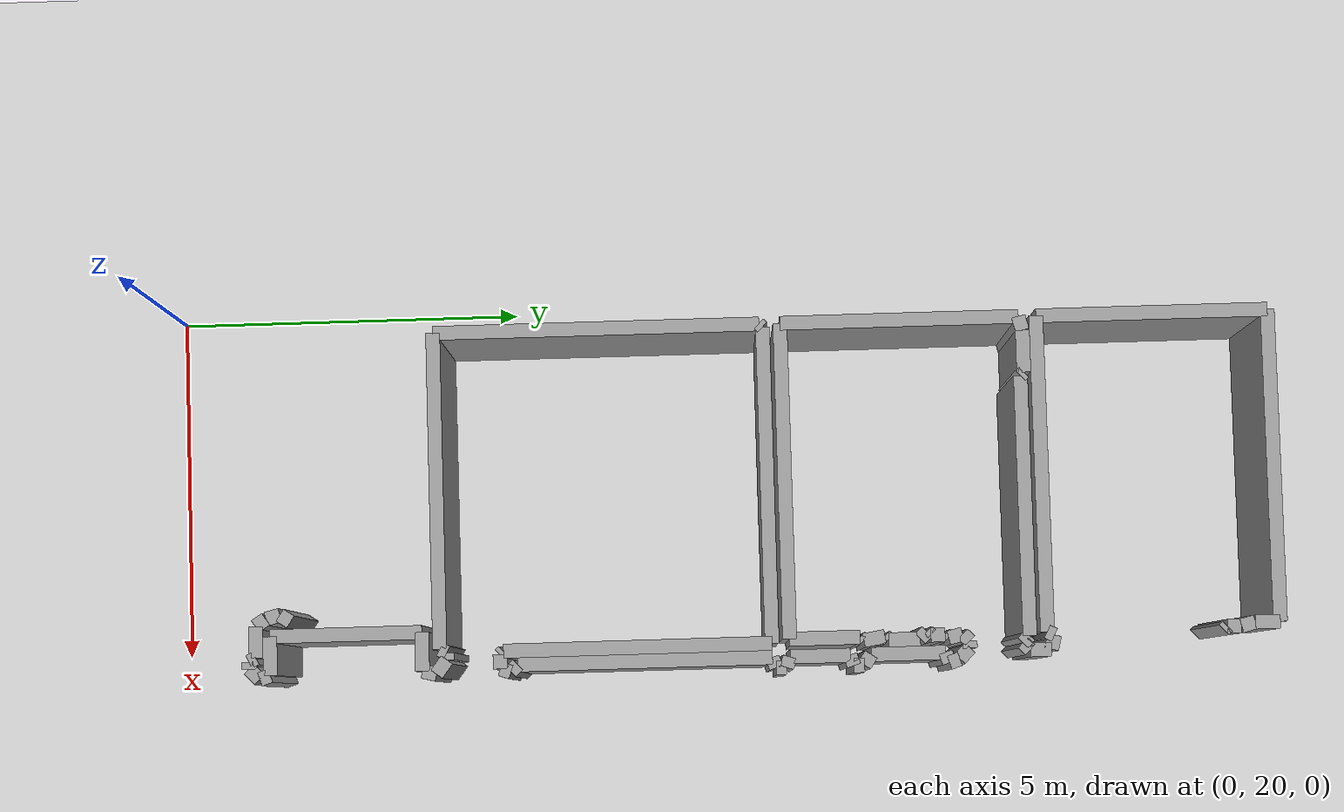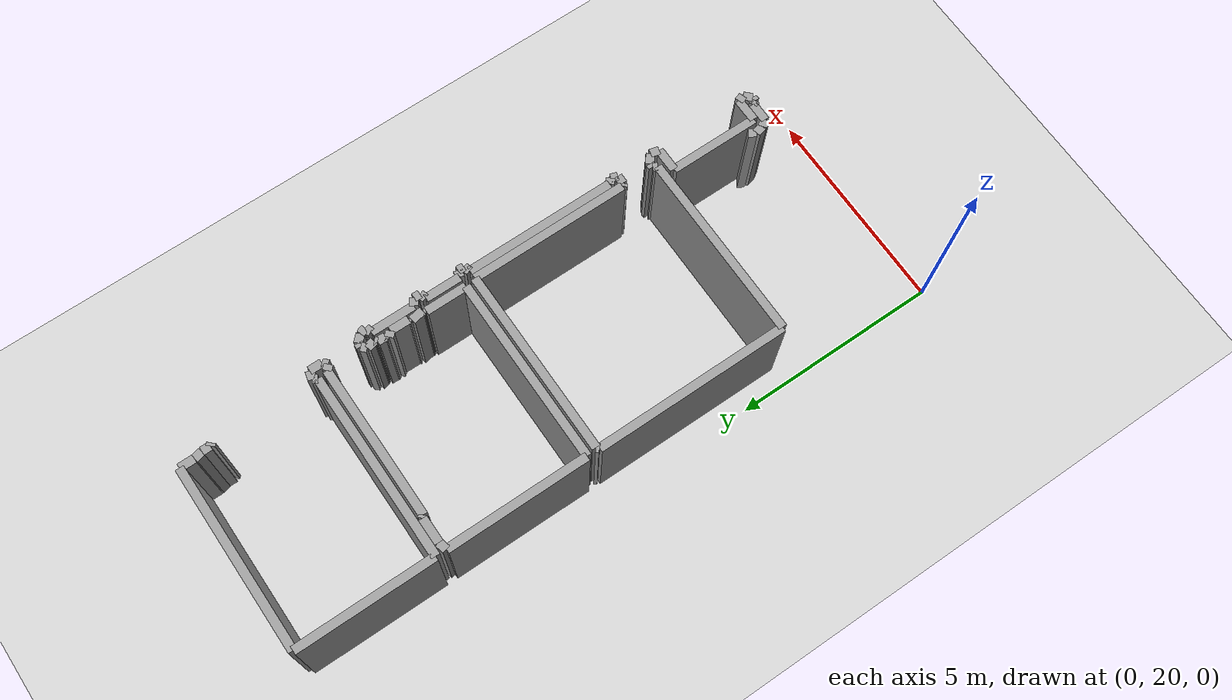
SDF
<sdf version="1.4">
 <world name="1_wall">
  <model name="ground_plane">
   <static>1</static>
   <link name="link">
    <collision name="collision">
     <geometry><plane><normal>0 0 1</normal><size>1000 1000</size></plane></geometry>
     <surface><friction><ode><mu>100</mu><mu2>50</mu2></ode></friction></surface>
    </collision>
    <visual name="visual">
     <cast_shadows>0</cast_shadows>
     <geometry><plane><normal>0 0 1</normal><size>10000 10000</size></plane></geometry>
     <material>
      <script><uri>file://media/materials/scripts/gazebo.material</uri><name>Gazebo/Grey</name></script>
     </material>
    </visual>
    <velocity_decay><linear>0</linear><angular>0</angular></velocity_decay>
   </link>
  </model>
  <model name="Wall_133">
   <static>1</static>
   <link name="Wall_133">
    <collision name="Wall_Collision_133">
     <geometry><box><size>0.1802775637731986 0.2 2.5</size></box></geometry>
     <pose>0 0 1.25 0 -0 0</pose>
    </collision>
    <visual name="Wall_Visual_133">
     <pose>0 0 1.25 0 -0 0</pose>
     <geometry><box><size>0.1802775637731986 0.2 2.5</size></box></geometry>
     <material>
      <script><uri>file://media/materials/scripts/gazebo.material</uri><name>Gazebo/Grey</name></script>
     </material>
    </visual>
    <velocity_decay><linear>0</linear><angular>0</angular></velocity_decay>
    <pose>4.550000000000001 21.775000000000002 0 0 0 -2.158798930342471</pose>
   </link>
  </model>
  <model name="Wall_134">
   <static>1</static>
   <link name="Wall_134">
    <collision name="Wall_Collision_134">
     <geometry><box><size>0.20615528128088575 0.2 2.5</size></box></geometry>
     <pose>0 0 1.25 0 -0 0</pose>
    </collision>
    <visual name="Wall_Visual_134">
     <pose>0 0 1.25 0 -0 0</pose>
     <geometry><box><size>0.20615528128088575 0.2 2.5</size></box></geometry>
     <material>
      <script><uri>file://media/materials/scripts/gazebo.material</uri><name>Gazebo/Grey</name></script>
     </material>
    </visual>
    <velocity_decay><linear>0</linear><angular>0</angular></velocity_decay>
    <pose>4.525 21.6 0 0 0 -1.3258176636680366</pose>
   </link>
  </model>
  <model name="Wall_135">
   <static>1</static>
   <link name="Wall_135">
    <collision name="Wall_Collision_135">
     <geometry><box><size>0.1802775637731986 0.2 2.5</size></box></geometry>
     <pose>0 0 1.25 0 -0 0</pose>
    </collision>
    <visual name="Wall_Visual_135">
     <pose>0 0 1.25 0 -0 0</pose>
     <geometry><box><size>0.1802775637731986 0.2 2.5</size></box></geometry>
     <material>
      <script><uri>file://media/materials/scripts/gazebo.material</uri><name>Gazebo/Grey</name></script>
     </material>
    </visual>
    <velocity_decay><linear>0</linear><angular>0</angular></velocity_decay>
    <pose>4.6 21.425 0 0 0 -0.9827937232473223</pose>
   </link>
  </model>
  <model name="Wall_136">
   <static>1</static>
   <link name="Wall_136">
    <collision name="Wall_Collision_136">
     <geometry><box><size>0.4500000000000002 0.2 2.5</size></box></geometry>
     <pose>0 0 1.25 0 -0 0</pose>
    </collision>
    <visual name="Wall_Visual_136">
     <pose>0 0 1.25 0 -0 0</pose>
     <geometry><box><size>0.4500000000000002 0.2 2.5</size></box></geometry>
     <material>
      <script><uri>file://media/materials/scripts/gazebo.material</uri><name>Gazebo/Grey</name></script>
     </material>
    </visual>
    <velocity_decay><linear>0</linear><angular>0</angular></velocity_decay>
    <pose>4.875 21.35 0 0 0 0.0</pose>
   </link>
  </model>
  <model name="Wall_137">
   <static>1</static>
   <link name="Wall_137">
    <collision name="Wall_Collision_137">
     <geometry><box><size>0.11180339887499069 0.2 2.5</size></box></geometry>
     <pose>0 0 1.25 0 -0 0</pose>
    </collision>
    <visual name="Wall_Visual_137">
     <pose>0 0 1.25 0 -0 0</pose>
     <geometry><box><size>0.11180339887499069 0.2 2.5</size></box></geometry>
     <material>
      <script><uri>file://media/materials/scripts/gazebo.material</uri><name>Gazebo/Grey</name></script>
     </material>
    </visual>
    <velocity_decay><linear>0</linear><angular>0</angular></velocity_decay>
    <pose>5.125 21.3 0 0 0 -1.1071487177940975</pose>
   </link>
  </model>
  <model name="Wall_138">
   <static>1</static>
   <link name="Wall_138">
    <collision name="Wall_Collision_138">
     <geometry><box><size>0.09999999999999964 0.2 2.5</size></box></geometry>
     <pose>0 0 1.25 0 -0 0</pose>
    </collision>
    <visual name="Wall_Visual_138">
     <pose>0 0 1.25 0 -0 0</pose>
     <geometry><box><size>0.09999999999999964 0.2 2.5</size></box></geometry>
     <material>
      <script><uri>file://media/materials/scripts/gazebo.material</uri><name>Gazebo/Grey</name></script>
     </material>
    </visual>
    <velocity_decay><linear>0</linear><angular>0</angular></velocity_decay>
    <pose>5.2 21.25 0 0 0 0.0</pose>
   </link>
  </model>
  <model name="Wall_139">
   <static>1</static>
   <link name="Wall_139">
    <collision name="Wall_Collision_139">
     <geometry><box><size>0.21213203435596603 0.2 2.5</size></box></geometry>
     <pose>0 0 1.25 0 -0 0</pose>
    </collision>
    <visual name="Wall_Visual_139">
     <pose>0 0 1.25 0 -0 0</pose>
     <geometry><box><size>0.21213203435596603 0.2 2.5</size></box></geometry>
     <material>
      <script><uri>file://media/materials/scripts/gazebo.material</uri><name>Gazebo/Grey</name></script>
     </material>
    </visual>
    <velocity_decay><linear>0</linear><angular>0</angular></velocity_decay>
    <pose>5.325 21.325000000000003 0 0 0 0.7853981633974543</pose>
   </link>
  </model>
  <model name="Wall_140">
   <static>1</static>
   <link name="Wall_140">
    <collision name="Wall_Collision_140">
     <geometry><box><size>0.15811388300841756 0.2 2.5</size></box></geometry>
     <pose>0 0 1.25 0 -0 0</pose>
    </collision>
    <visual name="Wall_Visual_140">
     <pose>0 0 1.25 0 -0 0</pose>
     <geometry><box><size>0.15811388300841756 0.2 2.5</size></box></geometry>
     <material>
      <script><uri>file://media/materials/scripts/gazebo.material</uri><name>Gazebo/Grey</name></script>
     </material>
    </visual>
    <velocity_decay><linear>0</linear><angular>0</angular></velocity_decay>
    <pose>5.375 21.475 0 0 0 1.8925468811915407</pose>
   </link>
  </model>
  <model name="Wall_141">
   <static>1</static>
   <link name="Wall_141">
    <collision name="Wall_Collision_141">
     <geometry><box><size>0.5499999999999998 0.2 2.5</size></box></geometry>
     <pose>0 0 1.25 0 -0 0</pose>
    </collision>
    <visual name="Wall_Visual_141">
     <pose>0 0 1.25 0 -0 0</pose>
     <geometry><box><size>0.5499999999999998 0.2 2.5</size></box></geometry>
     <material>
      <script><uri>file://media/materials/scripts/gazebo.material</uri><name>Gazebo/Grey</name></script>
     </material>
    </visual>
    <velocity_decay><linear>0</linear><angular>0</angular></velocity_decay>
    <pose>5.075000000000001 21.55 0 0 0 3.141592653589793</pose>
   </link>
  </model>
  <model name="Wall_142">
   <static>1</static>
   <link name="Wall_142">
    <collision name="Wall_Collision_142">
     <geometry><box><size>2.150000000000002 0.2 2.5</size></box></geometry>
     <pose>0 0 1.25 0 -0 0</pose>
    </collision>
    <visual name="Wall_Visual_142">
     <pose>0 0 1.25 0 -0 0</pose>
     <geometry><box><size>2.150000000000002 0.2 2.5</size></box></geometry>
     <material>
      <script><uri>file://media/materials/scripts/gazebo.material</uri><name>Gazebo/Grey</name></script>
     </material>
    </visual>
    <velocity_decay><linear>0</linear><angular>0</angular></velocity_decay>
    <pose>4.800000000000001 22.625 0 0 0 1.5707963267948966</pose>
   </link>
  </model>
  <model name="Wall_143">
   <static>1</static>
   <link name="Wall_143">
    <collision name="Wall_Collision_143">
     <geometry><box><size>0.5499999999999998 0.2 2.5</size></box></geometry>
     <pose>0 0 1.25 0 -0 0</pose>
    </collision>
    <visual name="Wall_Visual_143">
     <pose>0 0 1.25 0 -0 0</pose>
     <geometry><box><size>0.5499999999999998 0.2 2.5</size></box></geometry>
     <material>
      <script><uri>file://media/materials/scripts/gazebo.material</uri><name>Gazebo/Grey</name></script>
     </material>
    </visual>
    <velocity_decay><linear>0</linear><angular>0</angular></velocity_decay>
    <pose>5.075000000000001 23.700000000000003 0 0 0 0.0</pose>
   </link>
  </model>
  <model name="Wall_144">
   <static>1</static>
   <link name="Wall_144">
    <collision name="Wall_Collision_144">
     <geometry><box><size>0.20615528128088229 0.2 2.5</size></box></geometry>
     <pose>0 0 1.25 0 -0 0</pose>
    </collision>
    <visual name="Wall_Visual_144">
     <pose>0 0 1.25 0 -0 0</pose>
     <geometry><box><size>0.20615528128088229 0.2 2.5</size></box></geometry>
     <material>
      <script><uri>file://media/materials/scripts/gazebo.material</uri><name>Gazebo/Grey</name></script>
     </material>
    </visual>
    <velocity_decay><linear>0</linear><angular>0</angular></velocity_decay>
    <pose>5.375 23.800000000000004 0 0 0 1.3258176636680326</pose>
   </link>
  </model>
  <model name="Wall_145">
   <static>1</static>
   <link name="Wall_145">
    <collision name="Wall_Collision_145">
     <geometry><box><size>0.24999999999999928 0.2 2.5</size></box></geometry>
     <pose>0 0 1.25 0 -0 0</pose>
    </collision>
    <visual name="Wall_Visual_145">
     <pose>0 0 1.25 0 -0 0</pose>
     <geometry><box><size>0.24999999999999928 0.2 2.5</size></box></geometry>
     <material>
      <script><uri>file://media/materials/scripts/gazebo.material</uri><name>Gazebo/Grey</name></script>
     </material>
    </visual>
    <velocity_decay><linear>0</linear><angular>0</angular></velocity_decay>
    <pose>5.300000000000001 23.975 0 0 0 2.4980915447965137</pose>
   </link>
  </model>
  <model name="Wall_146">
   <static>1</static>
   <link name="Wall_146">
    <collision name="Wall_Collision_146">
     <geometry><box><size>0.09999999999999964 0.2 2.5</size></box></geometry>
     <pose>0 0 1.25 0 -0 0</pose>
    </collision>
    <visual name="Wall_Visual_146">
     <pose>0 0 1.25 0 -0 0</pose>
     <geometry><box><size>0.09999999999999964 0.2 2.5</size></box></geometry>
     <material>
      <script><uri>file://media/materials/scripts/gazebo.material</uri><name>Gazebo/Grey</name></script>
     </material>
    </visual>
    <velocity_decay><linear>0</linear><angular>0</angular></velocity_decay>
    <pose>5.15 24.05 0 0 0 3.141592653589793</pose>
   </link>
  </model>
  <model name="Wall_147">
   <static>1</static>
   <link name="Wall_147">
    <collision name="Wall_Collision_147">
     <geometry><box><size>0.1118033988749875 0.2 2.5</size></box></geometry>
     <pose>0 0 1.25 0 -0 0</pose>
    </collision>
    <visual name="Wall_Visual_147">
     <pose>0 0 1.25 0 -0 0</pose>
     <geometry><box><size>0.1118033988749875 0.2 2.5</size></box></geometry>
     <material>
      <script><uri>file://media/materials/scripts/gazebo.material</uri><name>Gazebo/Grey</name></script>
     </material>
    </visual>
    <velocity_decay><linear>0</linear><angular>0</angular></velocity_decay>
    <pose>5.075000000000001 24.0 0 0 0 -2.03444393579571</pose>
   </link>
  </model>
  <model name="Wall_148">
   <static>1</static>
   <link name="Wall_148">
    <collision name="Wall_Collision_148">
     <geometry><box><size>4.500000000000001 0.2 2.5</size></box></geometry>
     <pose>0 0 1.25 0 -0 0</pose>
    </collision>
    <visual name="Wall_Visual_148">
     <pose>0 0 1.25 0 -0 0</pose>
     <geometry><box><size>4.500000000000001 0.2 2.5</size></box></geometry>
     <material>
      <script><uri>file://media/materials/scripts/gazebo.material</uri><name>Gazebo/Grey</name></script>
     </material>
    </visual>
    <velocity_decay><linear>0</linear><angular>0</angular></velocity_decay>
    <pose>2.8000000000000003 23.950000000000003 0 0 0 3.141592653589793</pose>
   </link>
  </model>
  <model name="Wall_149">
   <static>1</static>
   <link name="Wall_149">
    <collision name="Wall_Collision_149">
     <geometry><box><size>4.649999999999999 0.2 2.5</size></box></geometry>
     <pose>0 0 1.25 0 -0 0</pose>
    </collision>
    <visual name="Wall_Visual_149">
     <pose>0 0 1.25 0 -0 0</pose>
     <geometry><box><size>4.649999999999999 0.2 2.5</size></box></geometry>
     <material>
      <script><uri>file://media/materials/scripts/gazebo.material</uri><name>Gazebo/Grey</name></script>
     </material>
    </visual>
    <velocity_decay><linear>0</linear><angular>0</angular></velocity_decay>
    <pose>0.55 26.275000000000002 0 0 0 1.5707963267948966</pose>
   </link>
  </model>
  <model name="Wall_150">
   <static>1</static>
   <link name="Wall_150">
    <collision name="Wall_Collision_150">
     <geometry><box><size>0.07071067811865529 0.2 2.5</size></box></geometry>
     <pose>0 0 1.25 0 -0 0</pose>
    </collision>
    <visual name="Wall_Visual_150">
     <pose>0 0 1.25 0 -0 0</pose>
     <geometry><box><size>0.07071067811865529 0.2 2.5</size></box></geometry>
     <material>
      <script><uri>file://media/materials/scripts/gazebo.material</uri><name>Gazebo/Grey</name></script>
     </material>
    </visual>
    <velocity_decay><linear>0</linear><angular>0</angular></velocity_decay>
    <pose>0.5750000000000001 28.625 0 0 0 0.7853981633974549</pose>
   </link>
  </model>
  <model name="Wall_151">
   <static>1</static>
   <link name="Wall_151">
    <collision name="Wall_Collision_151">
     <geometry><box><size>4.5 0.2 2.5</size></box></geometry>
     <pose>0 0 1.25 0 -0 0</pose>
    </collision>
    <visual name="Wall_Visual_151">
     <pose>0 0 1.25 0 -0 0</pose>
     <geometry><box><size>4.5 0.2 2.5</size></box></geometry>
     <material>
      <script><uri>file://media/materials/scripts/gazebo.material</uri><name>Gazebo/Grey</name></script>
     </material>
    </visual>
    <velocity_decay><linear>0</linear><angular>0</angular></velocity_decay>
    <pose>2.85 28.650000000000002 0 0 0 0.0</pose>
   </link>
  </model>
  <model name="Wall_152">
   <static>1</static>
   <link name="Wall_152">
    <collision name="Wall_Collision_152">
     <geometry><box><size>3.8000000000000007 0.2 2.5</size></box></geometry>
     <pose>0 0 1.25 0 -0 0</pose>
    </collision>
    <visual name="Wall_Visual_152">
     <pose>0 0 1.25 0 -0 0</pose>
     <geometry><box><size>3.8000000000000007 0.2 2.5</size></box></geometry>
     <material>
      <script><uri>file://media/materials/scripts/gazebo.material</uri><name>Gazebo/Grey</name></script>
     </material>
    </visual>
    <velocity_decay><linear>0</linear><angular>0</angular></velocity_decay>
    <pose>5.1000000000000005 26.75 0 0 0 -1.5707963267948966</pose>
   </link>
  </model>
  <model name="Wall_153">
   <static>1</static>
   <link name="Wall_153">
    <collision name="Wall_Collision_153">
     <geometry><box><size>0.07071067811865513 0.2 2.5</size></box></geometry>
     <pose>0 0 1.25 0 -0 0</pose>
    </collision>
    <visual name="Wall_Visual_153">
     <pose>0 0 1.25 0 -0 0</pose>
     <geometry><box><size>0.07071067811865513 0.2 2.5</size></box></geometry>
     <material>
      <script><uri>file://media/materials/scripts/gazebo.material</uri><name>Gazebo/Grey</name></script>
     </material>
    </visual>
    <velocity_decay><linear>0</linear><angular>0</angular></velocity_decay>
    <pose>5.125 24.825000000000003 0 0 0 -0.7853981633974572</pose>
   </link>
  </model>
  <model name="Wall_154">
   <static>1</static>
   <link name="Wall_154">
    <collision name="Wall_Collision_154">
     <geometry><box><size>0.20000000000000018 0.2 2.5</size></box></geometry>
     <pose>0 0 1.25 0 -0 0</pose>
    </collision>
    <visual name="Wall_Visual_154">
     <pose>0 0 1.25 0 -0 0</pose>
     <geometry><box><size>0.20000000000000018 0.2 2.5</size></box></geometry>
     <material>
      <script><uri>file://media/materials/scripts/gazebo.material</uri><name>Gazebo/Grey</name></script>
     </material>
    </visual>
    <velocity_decay><linear>0</linear><angular>0</angular></velocity_decay>
    <pose>5.25 24.8 0 0 0 0.0</pose>
   </link>
  </model>
  <model name="Wall_155">
   <static>1</static>
   <link name="Wall_155">
    <collision name="Wall_Collision_155">
     <geometry><box><size>0.15811388300842094 0.2 2.5</size></box></geometry>
     <pose>0 0 1.25 0 -0 0</pose>
    </collision>
    <visual name="Wall_Visual_155">
     <pose>0 0 1.25 0 -0 0</pose>
     <geometry><box><size>0.15811388300842094 0.2 2.5</size></box></geometry>
     <material>
      <script><uri>file://media/materials/scripts/gazebo.material</uri><name>Gazebo/Grey</name></script>
     </material>
    </visual>
    <velocity_decay><linear>0</linear><angular>0</angular></velocity_decay>
    <pose>5.375 24.875 0 0 0 1.2490457723982598</pose>
   </link>
  </model>
  <model name="Wall_156">
   <static>1</static>
   <link name="Wall_156">
    <collision name="Wall_Collision_156">
     <geometry><box><size>0.14142135623730775 0.2 2.5</size></box></geometry>
     <pose>0 0 1.25 0 -0 0</pose>
    </collision>
    <visual name="Wall_Visual_156">
     <pose>0 0 1.25 0 -0 0</pose>
     <geometry><box><size>0.14142135623730775 0.2 2.5</size></box></geometry>
     <material>
      <script><uri>file://media/materials/scripts/gazebo.material</uri><name>Gazebo/Grey</name></script>
     </material>
    </visual>
    <velocity_decay><linear>0</linear><angular>0</angular></velocity_decay>
    <pose>5.3500000000000005 25.0 0 0 0 2.3561944901923537</pose>
   </link>
  </model>
  <model name="Wall_157">
   <static>1</static>
   <link name="Wall_157">
    <collision name="Wall_Collision_157">
     <geometry><box><size>3.6000000000000014 0.2 2.5</size></box></geometry>
     <pose>0 0 1.25 0 -0 0</pose>
    </collision>
    <visual name="Wall_Visual_157">
     <pose>0 0 1.25 0 -0 0</pose>
     <geometry><box><size>3.6000000000000014 0.2 2.5</size></box></geometry>
     <material>
      <script><uri>file://media/materials/scripts/gazebo.material</uri><name>Gazebo/Grey</name></script>
     </material>
    </visual>
    <velocity_decay><linear>0</linear><angular>0</angular></velocity_decay>
    <pose>5.300000000000001 26.85 0 0 0 1.5707963267948966</pose>
   </link>
  </model>
  <model name="Wall_158">
   <static>1</static>
   <link name="Wall_158">
    <collision name="Wall_Collision_158">
     <geometry><box><size>0.1581138830084187 0.2 2.5</size></box></geometry>
     <pose>0 0 1.25 0 -0 0</pose>
    </collision>
    <visual name="Wall_Visual_158">
     <pose>0 0 1.25 0 -0 0</pose>
     <geometry><box><size>0.1581138830084187 0.2 2.5</size></box></geometry>
     <material>
      <script><uri>file://media/materials/scripts/gazebo.material</uri><name>Gazebo/Grey</name></script>
     </material>
    </visual>
    <velocity_decay><linear>0</linear><angular>0</angular></velocity_decay>
    <pose>5.375 28.675000000000004 0 0 0 0.3217505543966475</pose>
   </link>
  </model>
  <model name="Wall_159">
   <static>1</static>
   <link name="Wall_159">
    <collision name="Wall_Collision_159">
     <geometry><box><size>0.14999999999999858 0.2 2.5</size></box></geometry>
     <pose>0 0 1.25 0 -0 0</pose>
    </collision>
    <visual name="Wall_Visual_159">
     <pose>0 0 1.25 0 -0 0</pose>
     <geometry><box><size>0.14999999999999858 0.2 2.5</size></box></geometry>
     <material>
      <script><uri>file://media/materials/scripts/gazebo.material</uri><name>Gazebo/Grey</name></script>
     </material>
    </visual>
    <velocity_decay><linear>0</linear><angular>0</angular></velocity_decay>
    <pose>5.45 28.775000000000002 0 0 0 1.5707963267948966</pose>
   </link>
  </model>
  <model name="Wall_160">
   <static>1</static>
   <link name="Wall_160">
    <collision name="Wall_Collision_160">
     <geometry><box><size>0.1581138830084187 0.2 2.5</size></box></geometry>
     <pose>0 0 1.25 0 -0 0</pose>
    </collision>
    <visual name="Wall_Visual_160">
     <pose>0 0 1.25 0 -0 0</pose>
     <geometry><box><size>0.1581138830084187 0.2 2.5</size></box></geometry>
     <material>
      <script><uri>file://media/materials/scripts/gazebo.material</uri><name>Gazebo/Grey</name></script>
     </material>
    </visual>
    <velocity_decay><linear>0</linear><angular>0</angular></velocity_decay>
    <pose>5.375 28.875 0 0 0 2.8198420991931457</pose>
   </link>
  </model>
  <model name="Wall_161">
   <static>1</static>
   <link name="Wall_161">
    <collision name="Wall_Collision_161">
     <geometry><box><size>0.8499999999999979 0.2 2.5</size></box></geometry>
     <pose>0 0 1.25 0 -0 0</pose>
    </collision>
    <visual name="Wall_Visual_161">
     <pose>0 0 1.25 0 -0 0</pose>
     <geometry><box><size>0.8499999999999979 0.2 2.5</size></box></geometry>
     <material>
      <script><uri>file://media/materials/scripts/gazebo.material</uri><name>Gazebo/Grey</name></script>
     </material>
    </visual>
    <velocity_decay><linear>0</linear><angular>0</angular></velocity_decay>
    <pose>5.300000000000001 29.325000000000003 0 0 0 1.5707963267948966</pose>
   </link>
  </model>
  <model name="Wall_162">
   <static>1</static>
   <link name="Wall_162">
    <collision name="Wall_Collision_162">
     <geometry><box><size>0.1581138830084187 0.2 2.5</size></box></geometry>
     <pose>0 0 1.25 0 -0 0</pose>
    </collision>
    <visual name="Wall_Visual_162">
     <pose>0 0 1.25 0 -0 0</pose>
     <geometry><box><size>0.1581138830084187 0.2 2.5</size></box></geometry>
     <material>
      <script><uri>file://media/materials/scripts/gazebo.material</uri><name>Gazebo/Grey</name></script>
     </material>
    </visual>
    <velocity_decay><linear>0</linear><angular>0</angular></velocity_decay>
    <pose>5.375 29.775 0 0 0 0.3217505543966475</pose>
   </link>
  </model>
  <model name="Wall_163">
   <static>1</static>
   <link name="Wall_163">
    <collision name="Wall_Collision_163">
     <geometry><box><size>0.15000000000000213 0.2 2.5</size></box></geometry>
     <pose>0 0 1.25 0 -0 0</pose>
    </collision>
    <visual name="Wall_Visual_163">
     <pose>0 0 1.25 0 -0 0</pose>
     <geometry><box><size>0.15000000000000213 0.2 2.5</size></box></geometry>
     <material>
      <script><uri>file://media/materials/scripts/gazebo.material</uri><name>Gazebo/Grey</name></script>
     </material>
    </visual>
    <velocity_decay><linear>0</linear><angular>0</angular></velocity_decay>
    <pose>5.45 29.875 0 0 0 1.5707963267948966</pose>
   </link>
  </model>
  <model name="Wall_164">
   <static>1</static>
   <link name="Wall_164">
    <collision name="Wall_Collision_164">
     <geometry><box><size>0.18027756377319784 0.2 2.5</size></box></geometry>
     <pose>0 0 1.25 0 -0 0</pose>
    </collision>
    <visual name="Wall_Visual_164">
     <pose>0 0 1.25 0 -0 0</pose>
     <geometry><box><size>0.18027756377319784 0.2 2.5</size></box></geometry>
     <material>
      <script><uri>file://media/materials/scripts/gazebo.material</uri><name>Gazebo/Grey</name></script>
     </material>
    </visual>
    <velocity_decay><linear>0</linear><angular>0</angular></velocity_decay>
    <pose>5.375 30.0 0 0 0 2.5535900500422337</pose>
   </link>
  </model>
  <model name="Wall_165">
   <static>1</static>
   <link name="Wall_165">
    <collision name="Wall_Collision_165">
     <geometry><box><size>1.0500000000000007 0.2 2.5</size></box></geometry>
     <pose>0 0 1.25 0 -0 0</pose>
    </collision>
    <visual name="Wall_Visual_165">
     <pose>0 0 1.25 0 -0 0</pose>
     <geometry><box><size>1.0500000000000007 0.2 2.5</size></box></geometry>
     <material>
      <script><uri>file://media/materials/scripts/gazebo.material</uri><name>Gazebo/Grey</name></script>
     </material>
    </visual>
    <velocity_decay><linear>0</linear><angular>0</angular></velocity_decay>
    <pose>5.300000000000001 30.575000000000003 0 0 0 1.5707963267948966</pose>
   </link>
  </model>
  <model name="Wall_166">
   <static>1</static>
   <link name="Wall_166">
    <collision name="Wall_Collision_166">
     <geometry><box><size>0.1581138830084187 0.2 2.5</size></box></geometry>
     <pose>0 0 1.25 0 -0 0</pose>
    </collision>
    <visual name="Wall_Visual_166">
     <pose>0 0 1.25 0 -0 0</pose>
     <geometry><box><size>0.1581138830084187 0.2 2.5</size></box></geometry>
     <material>
      <script><uri>file://media/materials/scripts/gazebo.material</uri><name>Gazebo/Grey</name></script>
     </material>
    </visual>
    <velocity_decay><linear>0</linear><angular>0</angular></velocity_decay>
    <pose>5.375 31.125 0 0 0 0.3217505543966475</pose>
   </link>
  </model>
  <model name="Wall_167">
   <static>1</static>
   <link name="Wall_167">
    <collision name="Wall_Collision_167">
     <geometry><box><size>0.15811388300841756 0.2 2.5</size></box></geometry>
     <pose>0 0 1.25 0 -0 0</pose>
    </collision>
    <visual name="Wall_Visual_167">
     <pose>0 0 1.25 0 -0 0</pose>
     <geometry><box><size>0.15811388300841756 0.2 2.5</size></box></geometry>
     <material>
      <script><uri>file://media/materials/scripts/gazebo.material</uri><name>Gazebo/Grey</name></script>
     </material>
    </visual>
    <velocity_decay><linear>0</linear><angular>0</angular></velocity_decay>
    <pose>5.425000000000001 31.225 0 0 0 1.8925468811915407</pose>
   </link>
  </model>
  <model name="Wall_168">
   <static>1</static>
   <link name="Wall_168">
    <collision name="Wall_Collision_168">
     <geometry><box><size>0.21213203435596603 0.2 2.5</size></box></geometry>
     <pose>0 0 1.25 0 -0 0</pose>
    </collision>
    <visual name="Wall_Visual_168">
     <pose>0 0 1.25 0 -0 0</pose>
     <geometry><box><size>0.21213203435596603 0.2 2.5</size></box></geometry>
     <material>
      <script><uri>file://media/materials/scripts/gazebo.material</uri><name>Gazebo/Grey</name></script>
     </material>
    </visual>
    <velocity_decay><linear>0</linear><angular>0</angular></velocity_decay>
    <pose>5.325 31.375 0 0 0 2.356194490192339</pose>
   </link>
  </model>
  <model name="Wall_169">
   <static>1</static>
   <link name="Wall_169">
    <collision name="Wall_Collision_169">
     <geometry><box><size>0.09999999999999964 0.2 2.5</size></box></geometry>
     <pose>0 0 1.25 0 -0 0</pose>
    </collision>
    <visual name="Wall_Visual_169">
     <pose>0 0 1.25 0 -0 0</pose>
     <geometry><box><size>0.09999999999999964 0.2 2.5</size></box></geometry>
     <material>
      <script><uri>file://media/materials/scripts/gazebo.material</uri><name>Gazebo/Grey</name></script>
     </material>
    </visual>
    <velocity_decay><linear>0</linear><angular>0</angular></velocity_decay>
    <pose>5.2 31.450000000000003 0 0 0 3.141592653589793</pose>
   </link>
  </model>
  <model name="Wall_170">
   <static>1</static>
   <link name="Wall_170">
    <collision name="Wall_Collision_170">
     <geometry><box><size>0.14142135623731025 0.2 2.5</size></box></geometry>
     <pose>0 0 1.25 0 -0 0</pose>
    </collision>
    <visual name="Wall_Visual_170">
     <pose>0 0 1.25 0 -0 0</pose>
     <geometry><box><size>0.14142135623731025 0.2 2.5</size></box></geometry>
     <material>
      <script><uri>file://media/materials/scripts/gazebo.material</uri><name>Gazebo/Grey</name></script>
     </material>
    </visual>
    <velocity_decay><linear>0</linear><angular>0</angular></velocity_decay>
    <pose>5.1000000000000005 31.400000000000002 0 0 0 -2.356194490192336</pose>
   </link>
  </model>
  <model name="Wall_171">
   <static>1</static>
   <link name="Wall_171">
    <collision name="Wall_Collision_171">
     <geometry><box><size>0.20615528128088229 0.2 2.5</size></box></geometry>
     <pose>0 0 1.25 0 -0 0</pose>
    </collision>
    <visual name="Wall_Visual_171">
     <pose>0 0 1.25 0 -0 0</pose>
     <geometry><box><size>0.20615528128088229 0.2 2.5</size></box></geometry>
     <material>
      <script><uri>file://media/materials/scripts/gazebo.material</uri><name>Gazebo/Grey</name></script>
     </material>
    </visual>
    <velocity_decay><linear>0</linear><angular>0</angular></velocity_decay>
    <pose>5.075000000000001 31.25 0 0 0 -1.3258176636680326</pose>
   </link>
  </model>
  <model name="Wall_172">
   <static>1</static>
   <link name="Wall_172">
    <collision name="Wall_Collision_172">
     <geometry><box><size>0.07071067811865513 0.2 2.5</size></box></geometry>
     <pose>0 0 1.25 0 -0 0</pose>
    </collision>
    <visual name="Wall_Visual_172">
     <pose>0 0 1.25 0 -0 0</pose>
     <geometry><box><size>0.07071067811865513 0.2 2.5</size></box></geometry>
     <material>
      <script><uri>file://media/materials/scripts/gazebo.material</uri><name>Gazebo/Grey</name></script>
     </material>
    </visual>
    <velocity_decay><linear>0</linear><angular>0</angular></velocity_decay>
    <pose>5.075000000000001 31.125 0 0 0 -2.356194490192336</pose>
   </link>
  </model>
  <model name="Wall_173">
   <static>1</static>
   <link name="Wall_173">
    <collision name="Wall_Collision_173">
     <geometry><box><size>0.1999999999999993 0.2 2.5</size></box></geometry>
     <pose>0 0 1.25 0 -0 0</pose>
    </collision>
    <visual name="Wall_Visual_173">
     <pose>0 0 1.25 0 -0 0</pose>
     <geometry><box><size>0.1999999999999993 0.2 2.5</size></box></geometry>
     <material>
      <script><uri>file://media/materials/scripts/gazebo.material</uri><name>Gazebo/Grey</name></script>
     </material>
    </visual>
    <velocity_decay><linear>0</linear><angular>0</angular></velocity_decay>
    <pose>5.050000000000001 31.0 0 0 0 -1.5707963267948966</pose>
   </link>
  </model>
  <model name="Wall_174">
   <static>1</static>
   <link name="Wall_174">
    <collision name="Wall_Collision_174">
     <geometry><box><size>0.07071067811865576 0.2 2.5</size></box></geometry>
     <pose>0 0 1.25 0 -0 0</pose>
    </collision>
    <visual name="Wall_Visual_174">
     <pose>0 0 1.25 0 -0 0</pose>
     <geometry><box><size>0.07071067811865576 0.2 2.5</size></box></geometry>
     <material>
      <script><uri>file://media/materials/scripts/gazebo.material</uri><name>Gazebo/Grey</name></script>
     </material>
    </visual>
    <velocity_decay><linear>0</linear><angular>0</angular></velocity_decay>
    <pose>5.025 30.875 0 0 0 -2.356194490192345</pose>
   </link>
  </model>
  <model name="Wall_175">
   <static>1</static>
   <link name="Wall_175">
    <collision name="Wall_Collision_175">
     <geometry><box><size>0.1414213562373109 0.2 2.5</size></box></geometry>
     <pose>0 0 1.25 0 -0 0</pose>
    </collision>
    <visual name="Wall_Visual_175">
     <pose>0 0 1.25 0 -0 0</pose>
     <geometry><box><size>0.1414213562373109 0.2 2.5</size></box></geometry>
     <material>
      <script><uri>file://media/materials/scripts/gazebo.material</uri><name>Gazebo/Grey</name></script>
     </material>
    </visual>
    <velocity_decay><linear>0</linear><angular>0</angular></velocity_decay>
    <pose>5.050000000000001 30.8 0 0 0 -0.7853981633974527</pose>
   </link>
  </model>
  <model name="Wall_176">
   <static>1</static>
   <link name="Wall_176">
    <collision name="Wall_Collision_176">
     <geometry><box><size>0.4499999999999993 0.2 2.5</size></box></geometry>
     <pose>0 0 1.25 0 -0 0</pose>
    </collision>
    <visual name="Wall_Visual_176">
     <pose>0 0 1.25 0 -0 0</pose>
     <geometry><box><size>0.4499999999999993 0.2 2.5</size></box></geometry>
     <material>
      <script><uri>file://media/materials/scripts/gazebo.material</uri><name>Gazebo/Grey</name></script>
     </material>
    </visual>
    <velocity_decay><linear>0</linear><angular>0</angular></velocity_decay>
    <pose>5.1000000000000005 30.525 0 0 0 -1.5707963267948966</pose>
   </link>
  </model>
  <model name="Wall_177">
   <static>1</static>
   <link name="Wall_177">
    <collision name="Wall_Collision_177">
     <geometry><box><size>0.07071067811865513 0.2 2.5</size></box></geometry>
     <pose>0 0 1.25 0 -0 0</pose>
    </collision>
    <visual name="Wall_Visual_177">
     <pose>0 0 1.25 0 -0 0</pose>
     <geometry><box><size>0.07071067811865513 0.2 2.5</size></box></geometry>
     <material>
      <script><uri>file://media/materials/scripts/gazebo.material</uri><name>Gazebo/Grey</name></script>
     </material>
    </visual>
    <velocity_decay><linear>0</linear><angular>0</angular></velocity_decay>
    <pose>5.075000000000001 30.275 0 0 0 -2.356194490192336</pose>
   </link>
  </model>
  <model name="Wall_178">
   <static>1</static>
   <link name="Wall_178">
    <collision name="Wall_Collision_178">
     <geometry><box><size>0.3041381265149082 0.2 2.5</size></box></geometry>
     <pose>0 0 1.25 0 -0 0</pose>
    </collision>
    <visual name="Wall_Visual_178">
     <pose>0 0 1.25 0 -0 0</pose>
     <geometry><box><size>0.3041381265149082 0.2 2.5</size></box></geometry>
     <material>
      <script><uri>file://media/materials/scripts/gazebo.material</uri><name>Gazebo/Grey</name></script>
     </material>
    </visual>
    <velocity_decay><linear>0</linear><angular>0</angular></velocity_decay>
    <pose>5.075000000000001 30.1 0 0 0 -1.4056476493802688</pose>
   </link>
  </model>
  <model name="Wall_179">
   <static>1</static>
   <link name="Wall_179">
    <collision name="Wall_Collision_179">
     <geometry><box><size>0.07071067811865513 0.2 2.5</size></box></geometry>
     <pose>0 0 1.25 0 -0 0</pose>
    </collision>
    <visual name="Wall_Visual_179">
     <pose>0 0 1.25 0 -0 0</pose>
     <geometry><box><size>0.07071067811865513 0.2 2.5</size></box></geometry>
     <material>
      <script><uri>file://media/materials/scripts/gazebo.material</uri><name>Gazebo/Grey</name></script>
     </material>
    </visual>
    <velocity_decay><linear>0</linear><angular>0</angular></velocity_decay>
    <pose>5.075000000000001 29.925000000000004 0 0 0 -2.356194490192336</pose>
   </link>
  </model>
  <model name="Wall_180">
   <static>1</static>
   <link name="Wall_180">
    <collision name="Wall_Collision_180">
     <geometry><box><size>1.0 0.2 2.5</size></box></geometry>
     <pose>0 0 1.25 0 -0 0</pose>
    </collision>
    <visual name="Wall_Visual_180">
     <pose>0 0 1.25 0 -0 0</pose>
     <geometry><box><size>1.0 0.2 2.5</size></box></geometry>
     <material>
      <script><uri>file://media/materials/scripts/gazebo.material</uri><name>Gazebo/Grey</name></script>
     </material>
    </visual>
    <velocity_decay><linear>0</linear><angular>0</angular></velocity_decay>
    <pose>5.050000000000001 29.400000000000002 0 0 0 -1.5707963267948966</pose>
   </link>
  </model>
  <model name="Wall_181">
   <static>1</static>
   <link name="Wall_181">
    <collision name="Wall_Collision_181">
     <geometry><box><size>4.500000000000001 0.2 2.5</size></box></geometry>
     <pose>0 0 1.25 0 -0 0</pose>
    </collision>
    <visual name="Wall_Visual_181">
     <pose>0 0 1.25 0 -0 0</pose>
     <geometry><box><size>4.500000000000001 0.2 2.5</size></box></geometry>
     <material>
      <script><uri>file://media/materials/scripts/gazebo.material</uri><name>Gazebo/Grey</name></script>
     </material>
    </visual>
    <velocity_decay><linear>0</linear><angular>0</angular></velocity_decay>
    <pose>2.8000000000000003 28.900000000000002 0 0 0 3.141592653589793</pose>
   </link>
  </model>
  <model name="Wall_182">
   <static>1</static>
   <link name="Wall_182">
    <collision name="Wall_Collision_182">
     <geometry><box><size>3.400000000000002 0.2 2.5</size></box></geometry>
     <pose>0 0 1.25 0 -0 0</pose>
    </collision>
    <visual name="Wall_Visual_182">
     <pose>0 0 1.25 0 -0 0</pose>
     <geometry><box><size>3.400000000000002 0.2 2.5</size></box></geometry>
     <material>
      <script><uri>file://media/materials/scripts/gazebo.material</uri><name>Gazebo/Grey</name></script>
     </material>
    </visual>
    <velocity_decay><linear>0</linear><angular>0</angular></velocity_decay>
    <pose>0.55 30.6 0 0 0 1.5707963267948966</pose>
   </link>
  </model>
  <model name="Wall_183">
   <static>1</static>
   <link name="Wall_183">
    <collision name="Wall_Collision_183">
     <geometry><box><size>0.20615528128088229 0.2 2.5</size></box></geometry>
     <pose>0 0 1.25 0 -0 0</pose>
    </collision>
    <visual name="Wall_Visual_183">
     <pose>0 0 1.25 0 -0 0</pose>
     <geometry><box><size>0.20615528128088229 0.2 2.5</size></box></geometry>
     <material>
      <script><uri>file://media/materials/scripts/gazebo.material</uri><name>Gazebo/Grey</name></script>
     </material>
    </visual>
    <velocity_decay><linear>0</linear><angular>0</angular></velocity_decay>
    <pose>0.65 32.325 0 0 0 0.24497866312685082</pose>
   </link>
  </model>
  <model name="Wall_184">
   <static>1</static>
   <link name="Wall_184">
    <collision name="Wall_Collision_184">
     <geometry><box><size>0.6000000000000001 0.2 2.5</size></box></geometry>
     <pose>0 0 1.25 0 -0 0</pose>
    </collision>
    <visual name="Wall_Visual_184">
     <pose>0 0 1.25 0 -0 0</pose>
     <geometry><box><size>0.6000000000000001 0.2 2.5</size></box></geometry>
     <material>
      <script><uri>file://media/materials/scripts/gazebo.material</uri><name>Gazebo/Grey</name></script>
     </material>
    </visual>
    <velocity_decay><linear>0</linear><angular>0</angular></velocity_decay>
    <pose>1.05 32.35 0 0 0 0.0</pose>
   </link>
  </model>
  <model name="Wall_185">
   <static>1</static>
   <link name="Wall_185">
    <collision name="Wall_Collision_185">
     <geometry><box><size>0.07071067811865277 0.2 2.5</size></box></geometry>
     <pose>0 0 1.25 0 -0 0</pose>
    </collision>
    <visual name="Wall_Visual_185">
     <pose>0 0 1.25 0 -0 0</pose>
     <geometry><box><size>0.07071067811865277 0.2 2.5</size></box></geometry>
     <material>
      <script><uri>file://media/materials/scripts/gazebo.material</uri><name>Gazebo/Grey</name></script>
     </material>
    </visual>
    <velocity_decay><linear>0</linear><angular>0</angular></velocity_decay>
    <pose>1.375 32.325 0 0 0 -0.7853981633974194</pose>
   </link>
  </model>
  <model name="Wall_186">
   <static>1</static>
   <link name="Wall_186">
    <collision name="Wall_Collision_186">
     <geometry><box><size>3.7 0.2 2.5</size></box></geometry>
     <pose>0 0 1.25 0 -0 0</pose>
    </collision>
    <visual name="Wall_Visual_186">
     <pose>0 0 1.25 0 -0 0</pose>
     <geometry><box><size>3.7 0.2 2.5</size></box></geometry>
     <material>
      <script><uri>file://media/materials/scripts/gazebo.material</uri><name>Gazebo/Grey</name></script>
     </material>
    </visual>
    <velocity_decay><linear>0</linear><angular>0</angular></velocity_decay>
    <pose>3.25 32.300000000000004 0 0 0 0.0</pose>
   </link>
  </model>
  <model name="Wall_187">
   <static>1</static>
   <link name="Wall_187">
    <collision name="Wall_Collision_187">
     <geometry><box><size>0.14142135623731025 0.2 2.5</size></box></geometry>
     <pose>0 0 1.25 0 -0 0</pose>
    </collision>
    <visual name="Wall_Visual_187">
     <pose>0 0 1.25 0 -0 0</pose>
     <geometry><box><size>0.14142135623731025 0.2 2.5</size></box></geometry>
     <material>
      <script><uri>file://media/materials/scripts/gazebo.material</uri><name>Gazebo/Grey</name></script>
     </material>
    </visual>
    <velocity_decay><linear>0</linear><angular>0</angular></velocity_decay>
    <pose>5.15 32.25 0 0 0 -0.7853981633974572</pose>
   </link>
  </model>
  <model name="Wall_188">
   <static>1</static>
   <link name="Wall_188">
    <collision name="Wall_Collision_188">
     <geometry><box><size>0.1414213562373109 0.2 2.5</size></box></geometry>
     <pose>0 0 1.25 0 -0 0</pose>
    </collision>
    <visual name="Wall_Visual_188">
     <pose>0 0 1.25 0 -0 0</pose>
     <geometry><box><size>0.1414213562373109 0.2 2.5</size></box></geometry>
     <material>
      <script><uri>file://media/materials/scripts/gazebo.material</uri><name>Gazebo/Grey</name></script>
     </material>
    </visual>
    <velocity_decay><linear>0</linear><angular>0</angular></velocity_decay>
    <pose>5.25 32.25 0 0 0 0.7853981633974527</pose>
   </link>
  </model>
  <model name="Wall_189">
   <static>1</static>
   <link name="Wall_189">
    <collision name="Wall_Collision_189">
     <geometry><box><size>0.29999999999999716 0.2 2.5</size></box></geometry>
     <pose>0 0 1.25 0 -0 0</pose>
    </collision>
    <visual name="Wall_Visual_189">
     <pose>0 0 1.25 0 -0 0</pose>
     <geometry><box><size>0.29999999999999716 0.2 2.5</size></box></geometry>
     <material>
      <script><uri>file://media/materials/scripts/gazebo.material</uri><name>Gazebo/Grey</name></script>
     </material>
    </visual>
    <velocity_decay><linear>0</linear><angular>0</angular></velocity_decay>
    <pose>5.300000000000001 32.45 0 0 0 1.5707963267948966</pose>
   </link>
  </model>
  <model name="Wall_190">
   <static>1</static>
   <link name="Wall_190">
    <collision name="Wall_Collision_190">
     <geometry><box><size>0.2061552812808825 0.2 2.5</size></box></geometry>
     <pose>0 0 1.25 0 -0 0</pose>
    </collision>
    <visual name="Wall_Visual_190">
     <pose>0 0 1.25 0 -0 0</pose>
     <geometry><box><size>0.2061552812808825 0.2 2.5</size></box></geometry>
     <material>
      <script><uri>file://media/materials/scripts/gazebo.material</uri><name>Gazebo/Grey</name></script>
     </material>
    </visual>
    <velocity_decay><linear>0</linear><angular>0</angular></velocity_decay>
    <pose>5.200000000000001 32.625 0 0 0 2.8966139904629427</pose>
   </link>
  </model>
  <model name="Wall_191">
   <static>1</static>
   <link name="Wall_191">
    <collision name="Wall_Collision_191">
     <geometry><box><size>0.11180339887498432 0.2 2.5</size></box></geometry>
     <pose>0 0 1.25 0 -0 0</pose>
    </collision>
    <visual name="Wall_Visual_191">
     <pose>0 0 1.25 0 -0 0</pose>
     <geometry><box><size>0.11180339887498432 0.2 2.5</size></box></geometry>
     <material>
      <script><uri>file://media/materials/scripts/gazebo.material</uri><name>Gazebo/Grey</name></script>
     </material>
    </visual>
    <velocity_decay><linear>0</linear><angular>0</angular></velocity_decay>
    <pose>5.075000000000001 32.6 0 0 0 -2.034443935795724</pose>
   </link>
  </model>
  <model name="Wall_192">
   <static>1</static>
   <link name="Wall_192">
    <collision name="Wall_Collision_192">
     <geometry><box><size>4.500000000000001 0.2 2.5</size></box></geometry>
     <pose>0 0 1.25 0 -0 0</pose>
    </collision>
    <visual name="Wall_Visual_192">
     <pose>0 0 1.25 0 -0 0</pose>
     <geometry><box><size>4.500000000000001 0.2 2.5</size></box></geometry>
     <material>
      <script><uri>file://media/materials/scripts/gazebo.material</uri><name>Gazebo/Grey</name></script>
     </material>
    </visual>
    <velocity_decay><linear>0</linear><angular>0</angular></velocity_decay>
    <pose>2.8000000000000003 32.550000000000004 0 0 0 3.141592653589793</pose>
   </link>
  </model>
  <model name="Wall_193">
   <static>1</static>
   <link name="Wall_193">
    <collision name="Wall_Collision_193">
     <geometry><box><size>3.299999999999997 0.2 2.5</size></box></geometry>
     <pose>0 0 1.25 0 -0 0</pose>
    </collision>
    <visual name="Wall_Visual_193">
     <pose>0 0 1.25 0 -0 0</pose>
     <geometry><box><size>3.299999999999997 0.2 2.5</size></box></geometry>
     <material>
      <script><uri>file://media/materials/scripts/gazebo.material</uri><name>Gazebo/Grey</name></script>
     </material>
    </visual>
    <velocity_decay><linear>0</linear><angular>0</angular></velocity_decay>
    <pose>0.55 34.2 0 0 0 1.5707963267948966</pose>
   </link>
  </model>
  <model name="Wall_194">
   <static>1</static>
   <link name="Wall_194">
    <collision name="Wall_Collision_194">
     <geometry><box><size>4.45 0.2 2.5</size></box></geometry>
     <pose>0 0 1.25 0 -0 0</pose>
    </collision>
    <visual name="Wall_Visual_194">
     <pose>0 0 1.25 0 -0 0</pose>
     <geometry><box><size>4.45 0.2 2.5</size></box></geometry>
     <material>
      <script><uri>file://media/materials/scripts/gazebo.material</uri><name>Gazebo/Grey</name></script>
     </material>
    </visual>
    <velocity_decay><linear>0</linear><angular>0</angular></velocity_decay>
    <pose>2.7750000000000004 35.85 0 0 0 0.0</pose>
   </link>
  </model>
  <model name="Wall_195">
   <static>1</static>
   <link name="Wall_195">
    <collision name="Wall_Collision_195">
     <geometry><box><size>0.3500000000000014 0.2 2.5</size></box></geometry>
     <pose>0 0 1.25 0 -0 0</pose>
    </collision>
    <visual name="Wall_Visual_195">
     <pose>0 0 1.25 0 -0 0</pose>
     <geometry><box><size>0.3500000000000014 0.2 2.5</size></box></geometry>
     <material>
      <script><uri>file://media/materials/scripts/gazebo.material</uri><name>Gazebo/Grey</name></script>
     </material>
    </visual>
    <velocity_decay><linear>0</linear><angular>0</angular></velocity_decay>
    <pose>5.0 35.675 0 0 0 -1.5707963267948966</pose>
   </link>
  </model>
  <model name="Wall_196">
   <static>1</static>
   <link name="Wall_196">
    <collision name="Wall_Collision_196">
     <geometry><box><size>0.20615528128087907 0.2 2.5</size></box></geometry>
     <pose>0 0 1.25 0 -0 0</pose>
    </collision>
    <visual name="Wall_Visual_196">
     <pose>0 0 1.25 0 -0 0</pose>
     <geometry><box><size>0.20615528128087907 0.2 2.5</size></box></geometry>
     <material>
      <script><uri>file://media/materials/scripts/gazebo.material</uri><name>Gazebo/Grey</name></script>
     </material>
    </visual>
    <velocity_decay><linear>0</linear><angular>0</angular></velocity_decay>
    <pose>5.025 35.400000000000006 0 0 0 -1.3258176636680241</pose>
   </link>
  </model>
  <model name="Wall_197">
   <static>1</static>
   <link name="Wall_197">
    <collision name="Wall_Collision_197">
     <geometry><box><size>0.20000000000000284 0.2 2.5</size></box></geometry>
     <pose>0 0 1.25 0 -0 0</pose>
    </collision>
    <visual name="Wall_Visual_197">
     <pose>0 0 1.25 0 -0 0</pose>
     <geometry><box><size>0.20000000000000284 0.2 2.5</size></box></geometry>
     <material>
      <script><uri>file://media/materials/scripts/gazebo.material</uri><name>Gazebo/Grey</name></script>
     </material>
    </visual>
    <velocity_decay><linear>0</linear><angular>0</angular></velocity_decay>
    <pose>5.050000000000001 35.2 0 0 0 -1.5707963267948966</pose>
   </link>
  </model>
  <model name="Wall_198">
   <static>1</static>
   <link name="Wall_198">
    <collision name="Wall_Collision_198">
     <geometry><box><size>0.07071067811865261 0.2 2.5</size></box></geometry>
     <pose>0 0 1.25 0 -0 0</pose>
    </collision>
    <visual name="Wall_Visual_198">
     <pose>0 0 1.25 0 -0 0</pose>
     <geometry><box><size>0.07071067811865261 0.2 2.5</size></box></geometry>
     <material>
      <script><uri>file://media/materials/scripts/gazebo.material</uri><name>Gazebo/Grey</name></script>
     </material>
    </visual>
    <velocity_decay><linear>0</linear><angular>0</angular></velocity_decay>
    <pose>5.075000000000001 35.075 0 0 0 -0.7853981633974216</pose>
   </link>
  </model>
 </world>
</sdf>
